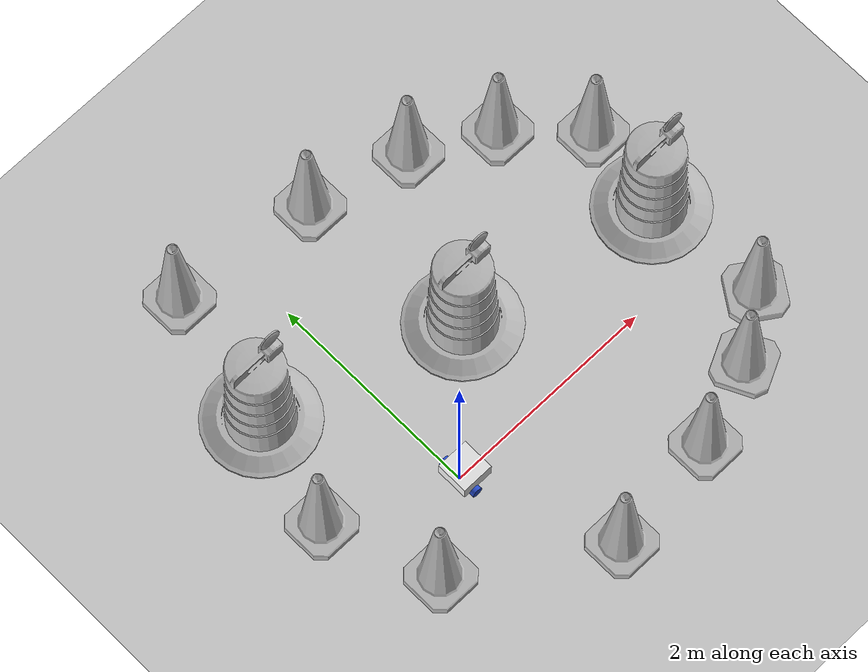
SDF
<sdf version="1.7">
 <world name="default">
  <light name="sun" type="directional">
   <pose>0 0 10 0 -0 0</pose>
   <diffuse>0.8 0.8 0.8 1</diffuse>
   <specular>0.2 0.2 0.2 1</specular>
   <attenuation>
    <range>1000</range>
    <constant>0.9</constant>
    <linear>0.01</linear>
    <quadratic>0.001</quadratic>
   </attenuation>
   <direction>-0.5 0.1 -0.9</direction>
   <spot><inner_angle>0</inner_angle><outer_angle>0</outer_angle><falloff>0</falloff></spot>
  </light>
  <model name="ground_plane">
   <static>1</static>
   <link name="link">
    <collision name="collision">
     <geometry><plane><normal>0 0 1</normal><size>100 100</size></plane></geometry>
     <surface>
      <contact><collide_bitmask>65535</collide_bitmask></contact>
      <friction><ode><mu>100</mu><mu2>50</mu2></ode></friction>
     </surface>
    </collision>
    <visual name="visual">
     <cast_shadows>0</cast_shadows>
     <geometry><plane><normal>0 0 1</normal><size>100 100</size></plane></geometry>
     <material>
      <script><uri>file://media/materials/scripts/gazebo.material</uri><name>Gazebo/Grey</name></script>
     </material>
    </visual>
   </link>
  </model>
  <gravity>0 0 -9.8</gravity>
  <magnetic_field>6e-06 2.3e-05 -4.2e-05</magnetic_field>
  <atmosphere type="adiabatic"/>
  <physics type="ode">
   <max_step_size>0.001</max_step_size>
   <real_time_factor>1</real_time_factor>
   <real_time_update_rate>1000</real_time_update_rate>
  </physics>
  <scene><ambient>0.4 0.4 0.4 1</ambient><background>0.7 0.7 0.7 1</background><shadows>1</shadows></scene>
  <spherical_coordinates>
   <surface_model>EARTH_WGS84</surface_model>
   <latitude_deg>0</latitude_deg>
   <longitude_deg>0</longitude_deg>
   <elevation>0</elevation>
   <heading_deg>0</heading_deg>
  </spherical_coordinates>
  <model name="my_bot">
   <link name="base_link">
    <inertial>
     <pose>0.065 0 0.0625 0 -0 0</pose>
     <mass>0.6</mass>
     <inertia>
      <ixx>0.00525625</ixx>
      <ixy>0</ixy>
      <ixz>0.0005625</ixz>
      <iyy>0.00593125</iyy>
      <iyz>0</iyz>
      <izz>0.008275</izz>
     </inertia>
    </inertial>
    <collision name="base_link_fixed_joint_lump__chassis_collision">
     <pose>0.05 0 0.075 0 -0 0</pose>
     <geometry><box><size>0.3 0.3 0.15</size></box></geometry>
    </collision>
    <collision name="base_link_fixed_joint_lump__caster_wheel_collision_1">
     <pose>0.14 0 0 0 -0 0</pose>
     <geometry><sphere><radius>0.05</radius></sphere></geometry>
     <surface><friction><ode><mu>0.0001</mu><mu2>0.0001</mu2></ode></friction></surface>
    </collision>
    <visual name="base_link_fixed_joint_lump__chassis_visual">
     <pose>0.05 0 0.075 0 -0 0</pose>
     <geometry><box><size>0.3 0.3 0.15</size></box></geometry>
     <material>
      <script><name>Gazebo/White</name><uri>file://media/materials/scripts/gazebo.material</uri></script>
     </material>
    </visual>
    <visual name="base_link_fixed_joint_lump__caster_wheel_visual_1">
     <pose>0.14 0 0 0 -0 0</pose>
     <geometry><sphere><radius>0.05</radius></sphere></geometry>
     <material>
      <script><name>Gazebo/Black</name><uri>file://media/materials/scripts/gazebo.material</uri></script>
     </material>
    </visual>
   </link>
   <joint name="left_wheel_joint" type="revolute">
    <pose relative_to="base_link">0 0.175 0 -1.5708 0 0</pose>
    <parent>base_link</parent>
    <child>left_wheel</child>
    <axis>
     <xyz>0 0 1</xyz>
     <limit><lower>-1e+16</lower><upper>1e+16</upper></limit>
     <dynamics><spring_reference>0</spring_reference><spring_stiffness>0</spring_stiffness></dynamics>
    </axis>
   </joint>
   <link name="left_wheel">
    <pose relative_to="left_wheel_joint">0 0 0 0 -0 0</pose>
    <inertial>
     <mass>0.1</mass>
     <inertia>
      <ixx>8.33333e-05</ixx>
      <ixy>0</ixy>
      <ixz>0</ixz>
      <iyy>8.33333e-05</iyy>
      <iyz>0</iyz>
      <izz>0.000125</izz>
     </inertia>
    </inertial>
    <collision name="left_wheel_collision">
     <geometry><cylinder><length>0.04</length><radius>0.05</radius></cylinder></geometry>
    </collision>
    <visual name="left_wheel_visual">
     <geometry><cylinder><length>0.04</length><radius>0.05</radius></cylinder></geometry>
     <material>
      <script><name>Gazebo/Blue</name><uri>file://media/materials/scripts/gazebo.material</uri></script>
     </material>
    </visual>
   </link>
   <joint name="right_wheel_joint" type="revolute">
    <pose relative_to="base_link">0 -0.175 0 1.5708 -0 0</pose>
    <parent>base_link</parent>
    <child>right_wheel</child>
    <axis>
     <xyz>0 0 -1</xyz>
     <limit><lower>-1e+16</lower><upper>1e+16</upper></limit>
     <dynamics><spring_reference>0</spring_reference><spring_stiffness>0</spring_stiffness></dynamics>
    </axis>
   </joint>
   <link name="right_wheel">
    <pose relative_to="right_wheel_joint">0 0 0 0 -0 0</pose>
    <inertial>
     <mass>0.1</mass>
     <inertia>
      <ixx>8.33333e-05</ixx>
      <ixy>0</ixy>
      <ixz>0</ixz>
      <iyy>8.33333e-05</iyy>
      <iyz>0</iyz>
      <izz>0.000125</izz>
     </inertia>
    </inertial>
    <collision name="right_wheel_collision">
     <geometry><cylinder><length>0.04</length><radius>0.05</radius></cylinder></geometry>
    </collision>
    <visual name="right_wheel_visual">
     <geometry><cylinder><length>0.04</length><radius>0.05</radius></cylinder></geometry>
     <material>
      <script><name>Gazebo/Blue</name><uri>file://media/materials/scripts/gazebo.material</uri></script>
     </material>
    </visual>
   </link>
   <static>0</static>
   <plugin name="diff_drive" filename="libgazebo_ros_diff_drive.so">
    <left_joint>left_wheel_joint</left_joint>
    <right_joint>right_wheel_joint</right_joint>
    <wheel_separation>0.35</wheel_separation>
    <wheel_diameter>0.1</wheel_diameter>
    <max_wheel_torque>200</max_wheel_torque>
    <max_wheel_acceleration>10.0</max_wheel_acceleration>
    <odometry_frame>odom</odometry_frame>
    <robot_base_frame>base_link</robot_base_frame>
    <publish_odom>1</publish_odom>
    <publish_odom_tf>1</publish_odom_tf>
    <publish_wheel_tf>1</publish_wheel_tf>
   </plugin>
   <pose>0.006938 1e-05 0.05 0 1.5e-05 -0.000705</pose>
  </model>
  <model name="Construction Barrel">
   <link name="link">
    <inertial>
     <pose>0 0 0.4 0 -0 0</pose>
     <mass>500</mass>
     <inertia><ixx>51.2096</ixx><iyy>51.2096</iyy><izz>25</izz><ixy>0</ixy><ixz>0</ixz><iyz>0</iyz></inertia>
    </inertial>
    <collision name="collision">
     <geometry><mesh><uri>model://construction_barrel/meshes/construction_barrel.dae</uri></mesh></geometry>
    </collision>
    <visual name="visual">
     <geometry><mesh><uri>model://construction_barrel/meshes/construction_barrel.dae</uri></mesh></geometry>
    </visual>
   </link>
   <pose>-0.786065 1.49009 1e-06 3e-06 2e-06 -2.6e-05</pose>
  </model>
  <model name="Construction Barrel_0">
   <link name="link">
    <inertial>
     <pose>0 0 0.4 0 -0 0</pose>
     <mass>500</mass>
     <inertia><ixx>51.2096</ixx><iyy>51.2096</iyy><izz>25</izz><ixy>0</ixy><ixz>0</ixz><iyz>0</iyz></inertia>
    </inertial>
    <collision name="collision">
     <geometry><mesh><uri>model://construction_barrel/meshes/construction_barrel.dae</uri></mesh></geometry>
    </collision>
    <visual name="visual">
     <geometry><mesh><uri>model://construction_barrel/meshes/construction_barrel.dae</uri></mesh></geometry>
    </visual>
   </link>
   <pose>0.958864 0.945371 1e-06 3e-06 2e-06 -2.5e-05</pose>
  </model>
  <model name="Construction Cone">
   <link name="link">
    <collision name="collision">
     <geometry>
      <mesh><scale>10 10 10</scale><uri>model://construction_cone/meshes/construction_cone.dae</uri></mesh>
     </geometry>
    </collision>
    <visual name="visual">
     <geometry>
      <mesh><scale>10 10 10</scale><uri>model://construction_cone/meshes/construction_cone.dae</uri></mesh>
     </geometry>
    </visual>
    <inertial>
     <inertia><ixx>1</ixx><ixy>0</ixy><ixz>0</ixz><iyy>1</iyy><iyz>0</iyz><izz>1</izz></inertia>
     <mass>1</mass>
    </inertial>
   </link>
   <pose>-1.06125 0.497091 -6e-06 -4e-06 0 0</pose>
  </model>
  <model name="Construction Cone_0">
   <link name="link">
    <collision name="collision">
     <geometry>
      <mesh><scale>10 10 10</scale><uri>model://construction_cone/meshes/construction_cone.dae</uri></mesh>
     </geometry>
    </collision>
    <visual name="visual">
     <geometry>
      <mesh><scale>10 10 10</scale><uri>model://construction_cone/meshes/construction_cone.dae</uri></mesh>
     </geometry>
    </visual>
    <inertial>
     <inertia><ixx>1</ixx><ixy>0</ixy><ixz>0</ixz><iyy>1</iyy><iyz>0</iyz><izz>1</izz></inertia>
     <mass>1</mass>
    </inertial>
   </link>
   <pose>-0.692006 -0.486982 -0 0 -0 0</pose>
  </model>
  <model name="Construction Cone_1">
   <link name="link">
    <collision name="collision">
     <geometry>
      <mesh><scale>10 10 10</scale><uri>model://construction_cone/meshes/construction_cone.dae</uri></mesh>
     </geometry>
    </collision>
    <visual name="visual">
     <geometry>
      <mesh><scale>10 10 10</scale><uri>model://construction_cone/meshes/construction_cone.dae</uri></mesh>
     </geometry>
    </visual>
    <inertial>
     <inertia><ixx>1</ixx><ixy>0</ixy><ixz>0</ixz><iyy>1</iyy><iyz>0</iyz><izz>1</izz></inertia>
     <mass>1</mass>
    </inertial>
   </link>
   <pose>0.541223 -1.2948 -0 0 -0 0</pose>
  </model>
  <model name="Construction Cone_2">
   <link name="link">
    <collision name="collision">
     <geometry>
      <mesh><scale>10 10 10</scale><uri>model://construction_cone/meshes/construction_cone.dae</uri></mesh>
     </geometry>
    </collision>
    <visual name="visual">
     <geometry>
      <mesh><scale>10 10 10</scale><uri>model://construction_cone/meshes/construction_cone.dae</uri></mesh>
     </geometry>
    </visual>
    <inertial>
     <inertia><ixx>1</ixx><ixy>0</ixy><ixz>0</ixz><iyy>1</iyy><iyz>0</iyz><izz>1</izz></inertia>
     <mass>1</mass>
    </inertial>
   </link>
   <pose>1.61058 -1.17623 -1e-05 -1e-06 0 0</pose>
  </model>
  <model name="Construction Cone_3">
   <link name="link">
    <collision name="collision">
     <geometry>
      <mesh><scale>10 10 10</scale><uri>model://construction_cone/meshes/construction_cone.dae</uri></mesh>
     </geometry>
    </collision>
    <visual name="visual">
     <geometry>
      <mesh><scale>10 10 10</scale><uri>model://construction_cone/meshes/construction_cone.dae</uri></mesh>
     </geometry>
    </visual>
    <inertial>
     <inertia><ixx>1</ixx><ixy>0</ixy><ixz>0</ixz><iyy>1</iyy><iyz>0</iyz><izz>1</izz></inertia>
     <mass>1</mass>
    </inertial>
   </link>
   <pose>-0.546789 2.70572 -0 1e-06 -0 0</pose>
  </model>
  <model name="Construction Cone_4">
   <link name="link">
    <collision name="collision">
     <geometry>
      <mesh><scale>10 10 10</scale><uri>model://construction_cone/meshes/construction_cone.dae</uri></mesh>
     </geometry>
    </collision>
    <visual name="visual">
     <geometry>
      <mesh><scale>10 10 10</scale><uri>model://construction_cone/meshes/construction_cone.dae</uri></mesh>
     </geometry>
    </visual>
    <inertial>
     <inertia><ixx>1</ixx><ixy>0</ixy><ixz>0</ixz><iyy>1</iyy><iyz>0</iyz><izz>1</izz></inertia>
     <mass>1</mass>
    </inertial>
   </link>
   <pose>0.7781 2.54984 -1e-05 -1e-06 0 0</pose>
  </model>
  <model name="Construction Barrel_1">
   <link name="link">
    <inertial>
     <pose>0 0 0.4 0 -0 0</pose>
     <mass>500</mass>
     <inertia><ixx>51.2096</ixx><iyy>51.2096</iyy><izz>25</izz><ixy>0</ixy><ixz>0</ixz><iyz>0</iyz></inertia>
    </inertial>
    <collision name="collision">
     <geometry><mesh><uri>model://construction_barrel/meshes/construction_barrel.dae</uri></mesh></geometry>
    </collision>
    <visual name="visual">
     <geometry><mesh><uri>model://construction_barrel/meshes/construction_barrel.dae</uri></mesh></geometry>
    </visual>
   </link>
   <pose>2.78025 0.592606 -1e-06 0 6e-06 0.003596</pose>
  </model>
  <model name="Construction Cone_5">
   <link name="link">
    <collision name="collision">
     <geometry>
      <mesh><scale>10 10 10</scale><uri>model://construction_cone/meshes/construction_cone.dae</uri></mesh>
     </geometry>
    </collision>
    <visual name="visual">
     <geometry>
      <mesh><scale>10 10 10</scale><uri>model://construction_cone/meshes/construction_cone.dae</uri></mesh>
     </geometry>
    </visual>
    <inertial>
     <inertia><ixx>1</ixx><ixy>0</ixy><ixz>0</ixz><iyy>1</iyy><iyz>0</iyz><izz>1</izz></inertia>
     <mass>1</mass>
    </inertial>
   </link>
   <pose>1.68742 2.32672 -0 0 -0 0</pose>
  </model>
  <model name="Construction Cone_6">
   <link name="link">
    <collision name="collision">
     <geometry>
      <mesh><scale>10 10 10</scale><uri>model://construction_cone/meshes/construction_cone.dae</uri></mesh>
     </geometry>
    </collision>
    <visual name="visual">
     <geometry>
      <mesh><scale>10 10 10</scale><uri>model://construction_cone/meshes/construction_cone.dae</uri></mesh>
     </geometry>
    </visual>
    <inertial>
     <inertia><ixx>1</ixx><ixy>0</ixy><ixz>0</ixz><iyy>1</iyy><iyz>0</iyz><izz>1</izz></inertia>
     <mass>1</mass>
    </inertial>
   </link>
   <pose>2.35144 1.95504 -0 0 -0 0</pose>
  </model>
  <model name="Construction Cone_7">
   <link name="link">
    <collision name="collision">
     <geometry>
      <mesh><scale>10 10 10</scale><uri>model://construction_cone/meshes/construction_cone.dae</uri></mesh>
     </geometry>
    </collision>
    <visual name="visual">
     <geometry>
      <mesh><scale>10 10 10</scale><uri>model://construction_cone/meshes/construction_cone.dae</uri></mesh>
     </geometry>
    </visual>
    <inertial>
     <inertia><ixx>1</ixx><ixy>0</ixy><ixz>0</ixz><iyy>1</iyy><iyz>0</iyz><izz>1</izz></inertia>
     <mass>1</mass>
    </inertial>
   </link>
   <pose>2.90396 1.39095 -0 0 -1e-06 0</pose>
  </model>
  <model name="Construction Cone_8">
   <link name="link">
    <collision name="collision">
     <geometry>
      <mesh><scale>10 10 10</scale><uri>model://construction_cone/meshes/construction_cone.dae</uri></mesh>
     </geometry>
    </collision>
    <visual name="visual">
     <geometry>
      <mesh><scale>10 10 10</scale><uri>model://construction_cone/meshes/construction_cone.dae</uri></mesh>
     </geometry>
    </visual>
    <inertial>
     <inertia><ixx>1</ixx><ixy>0</ixy><ixz>0</ixz><iyy>1</iyy><iyz>0</iyz><izz>1</izz></inertia>
     <mass>1</mass>
    </inertial>
   </link>
   <pose>2.84944 -0.533074 -0 0 -1e-06 -0.59346</pose>
  </model>
  <model name="Construction Cone_9">
   <link name="link">
    <collision name="collision">
     <geometry>
      <mesh><scale>10 10 10</scale><uri>model://construction_cone/meshes/construction_cone.dae</uri></mesh>
     </geometry>
    </collision>
    <visual name="visual">
     <geometry>
      <mesh><scale>10 10 10</scale><uri>model://construction_cone/meshes/construction_cone.dae</uri></mesh>
     </geometry>
    </visual>
    <inertial>
     <inertia><ixx>1</ixx><ixy>0</ixy><ixz>0</ixz><iyy>1</iyy><iyz>0</iyz><izz>1</izz></inertia>
     <mass>1</mass>
    </inertial>
   </link>
   <pose>2.33301 -0.912373 -0 0 -1e-06 0.457155</pose>
  </model>
 </world>
</sdf>
